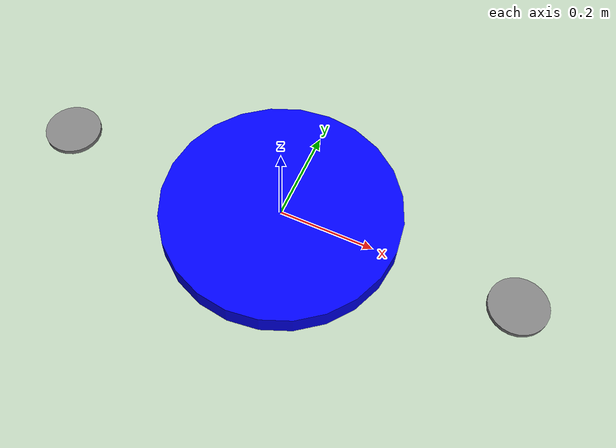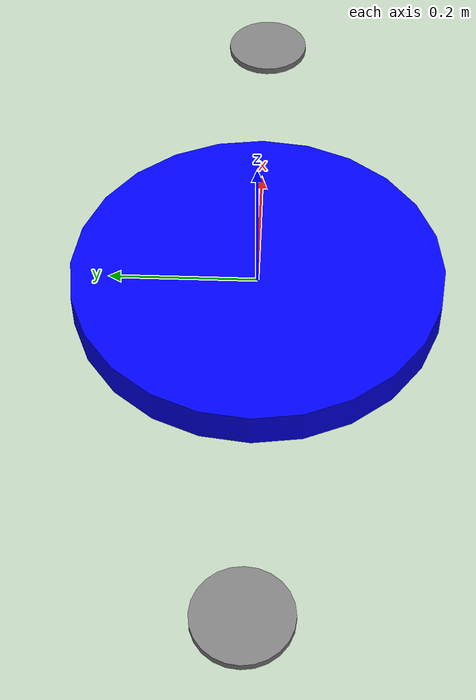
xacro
<?xml version="1.0"?>
<robot name="quadrotor_sitl" xmlns:xacro="http://www.ros.org/wiki/xacro">

  <xacro:arg name="is_ignition" default="true"/>
  <xacro:arg name="namespace" default=""/>

  <!-- Frame prefix for multi-robot use -->
  <xacro:property name="prefix" value="$(arg namespace)"/>

  <!-- Base (body) link -->
  <link name="${prefix}base_link">
    <inertial>
      <origin xyz="0 0 0" rpy="0 0 0"/>
      <mass value="1.5"/>
      <inertia ixx="0.03" ixy="0" ixz="0"
               iyy="0.03" iyz="0"
               izz="0.05"/>
    </inertial>
    <visual>
      <geometry>
        <cylinder length="0.05" radius="0.25"/>
      </geometry>
      <material name="blue"/>
    </visual>
    <collision>
      <geometry>
        <cylinder length="0.05" radius="0.25"/>
      </geometry>
    </collision>
    </link>

  <!-- Four rotor links -->
  <xacro:macro name="rotor" params="side sign">
    <link name="${prefix}${side}_rotor_link">
      <inertial>
        <origin xyz="0 0 0" rpy="0 0 0"/>
        <mass value="0.02"/>
        <inertia ixx="1e-5" ixy="0" ixz="0"
                 iyy="1e-5" iyz="0"
                 izz="1e-5"/>
      </inertial>
      <visual>
        <origin xyz="${sign * 0.25} 0 0" rpy="0 0 0"/>
        <geometry>
          <cylinder length="0.01" radius="0.06"/>
        </geometry>
        <material name="grey"/>
      </visual>
    </link>
    <joint name="${prefix}${side}_rotor_joint" type="fixed">
      <origin xyz="${sign * 0.25} 0 0" rpy="0 0 0"/>
      <parent link="${prefix}base_link"/>
      <child link="${prefix}${side}_rotor_link"/>
    </joint>
  </xacro:macro>

  <xacro:rotor side="front_left"  sign="1"/>
  <xacro:rotor side="front_right" sign="-1"/>
  <xacro:rotor side="rear_left"   sign="1"/>
  <xacro:rotor side="rear_right"  sign="-1"/>

  <!-- IMU sensor -->
  <link name="${prefix}imu_link">
    <inertial>
      <origin xyz="0 0 0" rpy="0 0 0"/>
      <mass value="0.01"/>
      <inertia ixx="1e-6" ixy="0" ixz="0"
               iyy="1e-6" iyz="0"
               izz="1e-6"/>
    </inertial>
  </link>
  <joint name="${prefix}imu_joint" type="fixed">
    <origin xyz="0 0 0.05" rpy="0 0 0"/>
    <parent link="${prefix}base_link"/>
    <child link="${prefix}imu_link"/>
  </joint>

  <!-- Downward LIDAR -->
  <link name="${prefix}laser_link">
    <inertial>
      <origin xyz="0 0 0" rpy="0 0 0"/>
      <mass value="0.01"/>
      <inertia ixx="1e-6" ixy="0" ixz="0"
               iyy="1e-6" iyz="0"
               izz="1e-6"/>
    </inertial>
  </link>
  <joint name="${prefix}laser_joint" type="fixed">
    <origin xyz="0 0 -0.15" rpy="3.14 0 0"/>
    <parent link="${prefix}base_link"/>
    <child link="${prefix}laser_link"/>
  </joint>

  <!-- Front-facing RGB camera -->
  <link name="${prefix}camera_link">
    <inertial>
      <origin xyz="0 0 0" rpy="0 0 0"/>
      <mass value="0.01"/>
      <inertia ixx="1e-6" ixy="0" ixz="0"
               iyy="1e-6" iyz="0"
               izz="1e-6"/>
    </inertial>
  </link>
  <joint name="${prefix}camera_joint" type="fixed">
    <origin xyz="0.1 0 0.02" rpy="0 0 0"/>
    <parent link="${prefix}base_link"/>
    <child link="${prefix}camera_link"/>
  </joint>

  <!-- Gazebo / gz-sim sensor plugins backing the registry sensor contracts -->
  <xacro:include filename="$(find robot_lab_robots)/quadrotor_sitl/urdf/quadrotor_gazebo.xacro"/>
  <xacro:quadrotor_gazebo is_ignition="$(arg is_ignition)" prefix="${prefix}"/>

  <!-- Material definitions -->
  <material name="blue">
    <color rgba="0 0 1 1"/>
  </material>
  <material name="grey">
    <color rgba="0.5 0.5 0.5 1"/>
  </material>

</robot>
